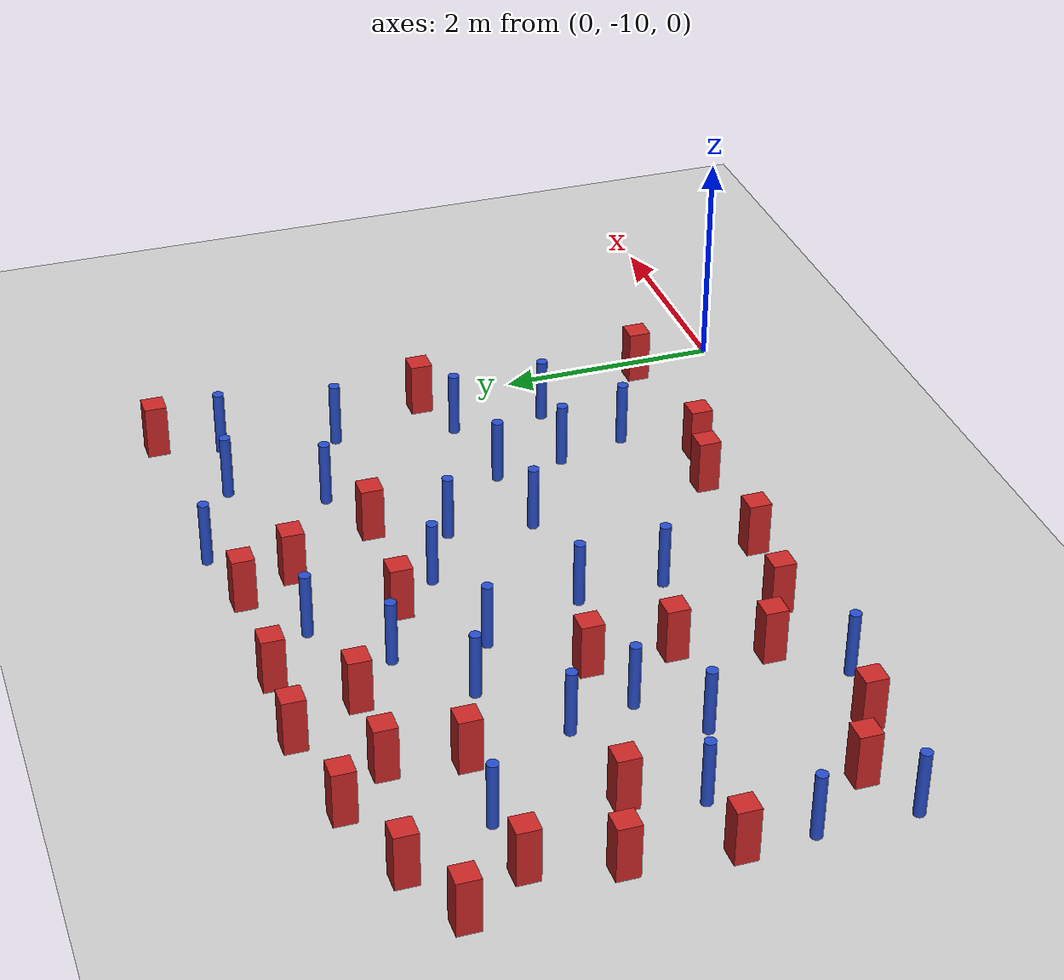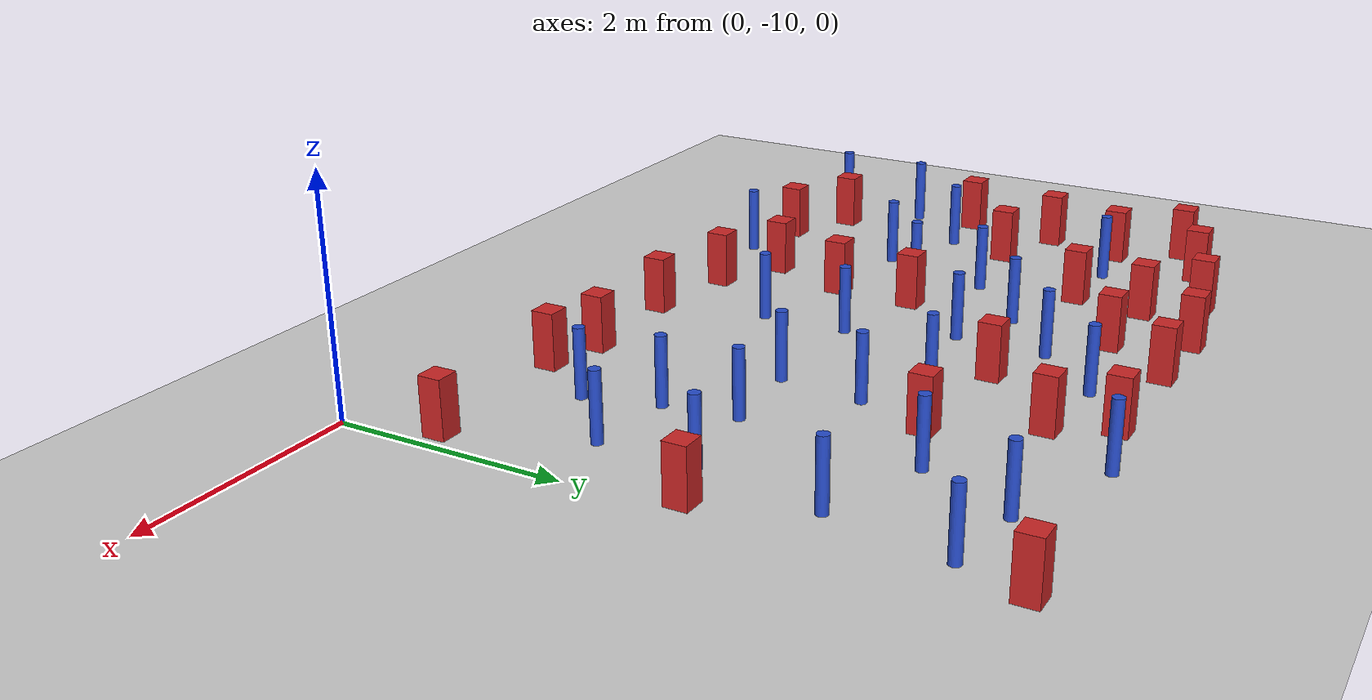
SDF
<sdf version="1.6">
 <world name="default">
  <model name="ground_plane">
   <static>1</static>
   <link name="link">
    <collision name="collision">
     <geometry><plane><normal>0 0 1</normal><size>100 100</size></plane></geometry>
     <surface><friction><ode><mu>100</mu><mu2>50</mu2></ode></friction></surface>
    </collision>
    <visual name="visual">
     <cast_shadows>0</cast_shadows>
     <geometry><plane><normal>0 0 1</normal><size>100 100</size></plane></geometry>
     <material>
      <ambient>1.0 1.0 1.0 1.0</ambient>
      <diffuse>0.8 0.8 0.8 1.0</diffuse>
      <specular>0.01 0.01 0.01 1.000000</specular>
     </material>
    </visual>
   </link>
  </model>
  <model name="pole_obstacle0">
   <static>true</static>
   <pose>-6.77165514357 -8.17607878755 2.88873142074e-08 -9.9053668967e-09 4.60219948993e-07 -1.20965994957e-07</pose>
   <link name="link">
    <pose>0 0 0.3 0 -0 0</pose>
    <inertial>
     <mass>1</mass>
     <inertia><ixx>0.145833</ixx><ixy>0</ixy><ixz>0</ixz><iyy>0.145833</iyy><iyz>0</iyz><izz>0.125</izz></inertia>
    </inertial>
    <collision name="collision">
     <geometry><cylinder><radius>0.05</radius><length>.6</length></cylinder></geometry>
    </collision>
    <visual name="visual">
     <geometry><cylinder><radius>0.05</radius><length>.6</length></cylinder></geometry>
     <material>
      <script><name>Gazebo/Blue</name><uri>file://media/materials/scripts/gazebo.material</uri></script>
     </material>
    </visual>
   </link>
  </model>
  <model name="pole_obstacle8">
   <static>true</static>
   <pose>-5.06630394369 -9.232732056 2.88873142074e-08 -9.9053668967e-09 4.60219948993e-07 -1.20965994957e-07</pose>
   <link name="link">
    <pose>0 0 0.3 0 -0 0</pose>
    <inertial>
     <mass>1</mass>
     <inertia><ixx>0.145833</ixx><ixy>0</ixy><ixz>0</ixz><iyy>0.145833</iyy><iyz>0</iyz><izz>0.125</izz></inertia>
    </inertial>
    <collision name="collision">
     <geometry><cylinder><radius>0.05</radius><length>.6</length></cylinder></geometry>
    </collision>
    <visual name="visual">
     <geometry><cylinder><radius>0.05</radius><length>.6</length></cylinder></geometry>
     <material>
      <script><name>Gazebo/Blue</name><uri>file://media/materials/scripts/gazebo.material</uri></script>
     </material>
    </visual>
   </link>
  </model>
  <model name="pole_obstacle21">
   <static>true</static>
   <pose>-6.17717436868 -7.54374471874 2.88873142074e-08 -9.90536690842e-09 4.60219948965e-07 -1.20965994976e-07</pose>
   <link name="link">
    <pose>0 0 0.3 0 -0 0</pose>
    <inertial>
     <mass>1</mass>
     <inertia><ixx>0.145833</ixx><ixy>0</ixy><ixz>0</ixz><iyy>0.145833</iyy><iyz>0</iyz><izz>0.125</izz></inertia>
    </inertial>
    <collision name="collision">
     <geometry><cylinder><radius>0.05</radius><length>.6</length></cylinder></geometry>
    </collision>
    <visual name="visual">
     <geometry><cylinder><radius>0.05</radius><length>.6</length></cylinder></geometry>
     <material>
      <script><name>Gazebo/Blue</name><uri>file://media/materials/scripts/gazebo.material</uri></script>
     </material>
    </visual>
   </link>
  </model>
  <model name="pole_obstacle24">
   <static>true</static>
   <pose>-3.81732461303 -6.56304847375 2.88873142074e-08 -9.90536692062e-09 4.60219948937e-07 -1.20965994985e-07</pose>
   <link name="link">
    <pose>0 0 0.3 0 -0 0</pose>
    <inertial>
     <mass>1</mass>
     <inertia><ixx>0.145833</ixx><ixy>0</ixy><ixz>0</ixz><iyy>0.145833</iyy><iyz>0</iyz><izz>0.125</izz></inertia>
    </inertial>
    <collision name="collision">
     <geometry><cylinder><radius>0.05</radius><length>.6</length></cylinder></geometry>
    </collision>
    <visual name="visual">
     <geometry><cylinder><radius>0.05</radius><length>.6</length></cylinder></geometry>
     <material>
      <script><name>Gazebo/Blue</name><uri>file://media/materials/scripts/gazebo.material</uri></script>
     </material>
    </visual>
   </link>
  </model>
  <model name="square_post_obstacle21">
   <static>true</static>
   <pose>-0.101962198539 -4.5727244108 8.22691968438e-08 7.2212513382e-06 -7.54495500217e-07 2.29674213826e-05</pose>
   <link name="link">
    <pose>0 0 0.25 0 -0 0</pose>
    <inertial>
     <mass>100</mass>
     <inertia>
      <ixx>0.166667</ixx>
      <ixy>0</ixy>
      <ixz>0</ixz>
      <iyy>0.166667</iyy>
      <iyz>0</iyz>
      <izz>0.166667</izz>
     </inertia>
    </inertial>
    <collision name="collision"><geometry><box><size>.2 .2 .5</size></box></geometry></collision>
    <visual name="visual">
     <geometry><box><size>.2 .2 .5</size></box></geometry>
     <material>
      <script><name>Gazebo/Red</name><uri>file://media/materials/scripts/gazebo.material</uri></script>
     </material>
    </visual>
   </link>
  </model>
  <model name="square_post_obstacle22">
   <static>true</static>
   <pose>-3.77840974403 -4.7696601577 8.22691968438e-08 7.22125133819e-06 -7.54495500217e-07 2.29674213826e-05</pose>
   <link name="link">
    <pose>0 0 0.25 0 -0 0</pose>
    <inertial>
     <mass>100</mass>
     <inertia>
      <ixx>0.166667</ixx>
      <ixy>0</ixy>
      <ixz>0</ixz>
      <iyy>0.166667</iyy>
      <iyz>0</iyz>
      <izz>0.166667</izz>
     </inertia>
    </inertial>
    <collision name="collision"><geometry><box><size>.2 .2 .5</size></box></geometry></collision>
    <visual name="visual">
     <geometry><box><size>.2 .2 .5</size></box></geometry>
     <material>
      <script><name>Gazebo/Red</name><uri>file://media/materials/scripts/gazebo.material</uri></script>
     </material>
    </visual>
   </link>
  </model>
  <model name="square_post_obstacle25">
   <static>true</static>
   <pose>-4.56944384187 -4.74234338974 8.22691968438e-08 7.22125133819e-06 -7.54495500217e-07 2.29674213826e-05</pose>
   <link name="link">
    <pose>0 0 0.25 0 -0 0</pose>
    <inertial>
     <mass>100</mass>
     <inertia>
      <ixx>0.166667</ixx>
      <ixy>0</ixy>
      <ixz>0</ixz>
      <iyy>0.166667</iyy>
      <iyz>0</iyz>
      <izz>0.166667</izz>
     </inertia>
    </inertial>
    <collision name="collision"><geometry><box><size>.2 .2 .5</size></box></geometry></collision>
    <visual name="visual">
     <geometry><box><size>.2 .2 .5</size></box></geometry>
     <material>
      <script><name>Gazebo/Red</name><uri>file://media/materials/scripts/gazebo.material</uri></script>
     </material>
    </visual>
   </link>
  </model>
  <model name="square_post_obstacle31">
   <static>true</static>
   <pose>-2.41314521624 -5.27377680135 8.22691968438e-08 7.2212513382e-06 -7.54495500217e-07 2.29674213826e-05</pose>
   <link name="link">
    <pose>0 0 0.25 0 -0 0</pose>
    <inertial>
     <mass>100</mass>
     <inertia>
      <ixx>0.166667</ixx>
      <ixy>0</ixy>
      <ixz>0</ixz>
      <iyy>0.166667</iyy>
      <iyz>0</iyz>
      <izz>0.166667</izz>
     </inertia>
    </inertial>
    <collision name="collision"><geometry><box><size>.2 .2 .5</size></box></geometry></collision>
    <visual name="visual">
     <geometry><box><size>.2 .2 .5</size></box></geometry>
     <material>
      <script><name>Gazebo/Red</name><uri>file://media/materials/scripts/gazebo.material</uri></script>
     </material>
    </visual>
   </link>
  </model>
  <model name="square_post_obstacle44">
   <static>true</static>
   <pose>-0.199405811699 -9.20870484476 8.22691968438e-08 7.22125133819e-06 -7.54495500217e-07 2.29674213826e-05</pose>
   <link name="link">
    <pose>0 0 0.25 0 -0 0</pose>
    <inertial>
     <mass>100</mass>
     <inertia>
      <ixx>0.166667</ixx>
      <ixy>0</ixy>
      <ixz>0</ixz>
      <iyy>0.166667</iyy>
      <iyz>0</iyz>
      <izz>0.166667</izz>
     </inertia>
    </inertial>
    <collision name="collision"><geometry><box><size>.2 .2 .5</size></box></geometry></collision>
    <visual name="visual">
     <geometry><box><size>.2 .2 .5</size></box></geometry>
     <material>
      <script><name>Gazebo/Red</name><uri>file://media/materials/scripts/gazebo.material</uri></script>
     </material>
    </visual>
   </link>
  </model>
  <model name="pole_obstacle59">
   <static>true</static>
   <pose>-3.49271152929 -7.47001296797 2.88873142074e-08 -9.90536692062e-09 4.60219948937e-07 -1.20965994985e-07</pose>
   <link name="link">
    <pose>0 0 0.3 0 -0 0</pose>
    <inertial>
     <mass>1</mass>
     <inertia><ixx>0.145833</ixx><ixy>0</ixy><ixz>0</ixz><iyy>0.145833</iyy><iyz>0</iyz><izz>0.125</izz></inertia>
    </inertial>
    <collision name="collision">
     <geometry><cylinder><radius>0.05</radius><length>.6</length></cylinder></geometry>
    </collision>
    <visual name="visual">
     <geometry><cylinder><radius>0.05</radius><length>.6</length></cylinder></geometry>
     <material>
      <script><name>Gazebo/Blue</name><uri>file://media/materials/scripts/gazebo.material</uri></script>
     </material>
    </visual>
   </link>
  </model>
  <model name="pole_obstacle60">
   <static>true</static>
   <pose>-2.84121401483 -6.38766666463 2.88873142074e-08 -9.90536689859e-09 4.60219948989e-07 -1.20965994961e-07</pose>
   <link name="link">
    <pose>0 0 0.3 0 -0 0</pose>
    <inertial>
     <mass>1</mass>
     <inertia><ixx>0.145833</ixx><ixy>0</ixy><ixz>0</ixz><iyy>0.145833</iyy><iyz>0</iyz><izz>0.125</izz></inertia>
    </inertial>
    <collision name="collision">
     <geometry><cylinder><radius>0.05</radius><length>.6</length></cylinder></geometry>
    </collision>
    <visual name="visual">
     <geometry><cylinder><radius>0.05</radius><length>.6</length></cylinder></geometry>
     <material>
      <script><name>Gazebo/Blue</name><uri>file://media/materials/scripts/gazebo.material</uri></script>
     </material>
    </visual>
   </link>
  </model>
  <model name="pole_obstacle66">
   <static>true</static>
   <pose>-3.2269163307 -5.19764869994 2.88873142074e-08 -9.90536689859e-09 4.60219948989e-07 -1.20965994961e-07</pose>
   <link name="link">
    <pose>0 0 0.3 0 -0 0</pose>
    <inertial>
     <mass>1</mass>
     <inertia><ixx>0.145833</ixx><ixy>0</ixy><ixz>0</ixz><iyy>0.145833</iyy><iyz>0</iyz><izz>0.125</izz></inertia>
    </inertial>
    <collision name="collision">
     <geometry><cylinder><radius>0.05</radius><length>.6</length></cylinder></geometry>
    </collision>
    <visual name="visual">
     <geometry><cylinder><radius>0.05</radius><length>.6</length></cylinder></geometry>
     <material>
      <script><name>Gazebo/Blue</name><uri>file://media/materials/scripts/gazebo.material</uri></script>
     </material>
    </visual>
   </link>
  </model>
  <model name="square_post_obstacle55">
   <static>true</static>
   <pose>-2.65385909627 -4.79170296392 8.22691968438e-08 7.2212513382e-06 -7.54495500217e-07 2.29674213826e-05</pose>
   <link name="link">
    <pose>0 0 0.25 0 -0 0</pose>
    <inertial>
     <mass>100</mass>
     <inertia>
      <ixx>0.166667</ixx>
      <ixy>0</ixy>
      <ixz>0</ixz>
      <iyy>0.166667</iyy>
      <iyz>0</iyz>
      <izz>0.166667</izz>
     </inertia>
    </inertial>
    <collision name="collision"><geometry><box><size>.2 .2 .5</size></box></geometry></collision>
    <visual name="visual">
     <geometry><box><size>.2 .2 .5</size></box></geometry>
     <material>
      <script><name>Gazebo/Red</name><uri>file://media/materials/scripts/gazebo.material</uri></script>
     </material>
    </visual>
   </link>
  </model>
  <model name="square_post_obstacle62">
   <static>true</static>
   <pose>-5.99004791572 -6.9444096571 8.22691968438e-08 7.2212513382e-06 -7.54495500217e-07 2.29674213826e-05</pose>
   <link name="link">
    <pose>0 0 0.25 0 -0 0</pose>
    <inertial>
     <mass>100</mass>
     <inertia>
      <ixx>0.166667</ixx>
      <ixy>0</ixy>
      <ixz>0</ixz>
      <iyy>0.166667</iyy>
      <iyz>0</iyz>
      <izz>0.166667</izz>
     </inertia>
    </inertial>
    <collision name="collision"><geometry><box><size>.2 .2 .5</size></box></geometry></collision>
    <visual name="visual">
     <geometry><box><size>.2 .2 .5</size></box></geometry>
     <material>
      <script><name>Gazebo/Red</name><uri>file://media/materials/scripts/gazebo.material</uri></script>
     </material>
    </visual>
   </link>
  </model>
  <model name="pole_obstacle78">
   <static>true</static>
   <pose>-1.25417645931 -8.67485099715 2.88873142074e-08 -9.90536690474e-09 4.60219948974e-07 -1.2096599497e-07</pose>
   <link name="link">
    <pose>0 0 0.3 0 -0 0</pose>
    <inertial>
     <mass>1</mass>
     <inertia><ixx>0.145833</ixx><ixy>0</ixy><ixz>0</ixz><iyy>0.145833</iyy><iyz>0</iyz><izz>0.125</izz></inertia>
    </inertial>
    <collision name="collision">
     <geometry><cylinder><radius>0.05</radius><length>.6</length></cylinder></geometry>
    </collision>
    <visual name="visual">
     <geometry><cylinder><radius>0.05</radius><length>.6</length></cylinder></geometry>
     <material>
      <script><name>Gazebo/Blue</name><uri>file://media/materials/scripts/gazebo.material</uri></script>
     </material>
    </visual>
   </link>
  </model>
  <model name="pole_obstacle80">
   <static>true</static>
   <pose>-1.50335741557 -7.39721989339 2.88873142074e-08 -9.90536689852e-09 4.60219948989e-07 -1.2096599496e-07</pose>
   <link name="link">
    <pose>0 0 0.3 0 -0 0</pose>
    <inertial>
     <mass>1</mass>
     <inertia><ixx>0.145833</ixx><ixy>0</ixy><ixz>0</ixz><iyy>0.145833</iyy><iyz>0</iyz><izz>0.125</izz></inertia>
    </inertial>
    <collision name="collision">
     <geometry><cylinder><radius>0.05</radius><length>.6</length></cylinder></geometry>
    </collision>
    <visual name="visual">
     <geometry><cylinder><radius>0.05</radius><length>.6</length></cylinder></geometry>
     <material>
      <script><name>Gazebo/Blue</name><uri>file://media/materials/scripts/gazebo.material</uri></script>
     </material>
    </visual>
   </link>
  </model>
  <model name="pole_obstacle83">
   <static>true</static>
   <pose>-5.92347277667 -5.93102095292 2.88873142074e-08 -9.90536690842e-09 4.60219948965e-07 -1.20965994976e-07</pose>
   <link name="link">
    <pose>0 0 0.3 0 -0 0</pose>
    <inertial>
     <mass>1</mass>
     <inertia><ixx>0.145833</ixx><ixy>0</ixy><ixz>0</ixz><iyy>0.145833</iyy><iyz>0</iyz><izz>0.125</izz></inertia>
    </inertial>
    <collision name="collision">
     <geometry><cylinder><radius>0.05</radius><length>.6</length></cylinder></geometry>
    </collision>
    <visual name="visual">
     <geometry><cylinder><radius>0.05</radius><length>.6</length></cylinder></geometry>
     <material>
      <script><name>Gazebo/Blue</name><uri>file://media/materials/scripts/gazebo.material</uri></script>
     </material>
    </visual>
   </link>
  </model>
  <model name="pole_obstacle87">
   <static>true</static>
   <pose>-6.78232700925 -9.01000941079 2.88873142074e-08 -9.9053668967e-09 4.60219948993e-07 -1.20965994957e-07</pose>
   <link name="link">
    <pose>0 0 0.3 0 -0 0</pose>
    <inertial>
     <mass>1</mass>
     <inertia><ixx>0.145833</ixx><ixy>0</ixy><ixz>0</ixz><iyy>0.145833</iyy><iyz>0</iyz><izz>0.125</izz></inertia>
    </inertial>
    <collision name="collision">
     <geometry><cylinder><radius>0.05</radius><length>.6</length></cylinder></geometry>
    </collision>
    <visual name="visual">
     <geometry><cylinder><radius>0.05</radius><length>.6</length></cylinder></geometry>
     <material>
      <script><name>Gazebo/Blue</name><uri>file://media/materials/scripts/gazebo.material</uri></script>
     </material>
    </visual>
   </link>
  </model>
  <model name="square_post_obstacle77">
   <static>true</static>
   <pose>-3.21331178517 -9.17067999536 8.22691968438e-08 7.22125133819e-06 -7.54495500217e-07 2.29674213826e-05</pose>
   <link name="link">
    <pose>0 0 0.25 0 -0 0</pose>
    <inertial>
     <mass>100</mass>
     <inertia>
      <ixx>0.166667</ixx>
      <ixy>0</ixy>
      <ixz>0</ixz>
      <iyy>0.166667</iyy>
      <iyz>0</iyz>
      <izz>0.166667</izz>
     </inertia>
    </inertial>
    <collision name="collision"><geometry><box><size>.2 .2 .5</size></box></geometry></collision>
    <visual name="visual">
     <geometry><box><size>.2 .2 .5</size></box></geometry>
     <material>
      <script><name>Gazebo/Red</name><uri>file://media/materials/scripts/gazebo.material</uri></script>
     </material>
    </visual>
   </link>
  </model>
  <model name="pole_obstacle91">
   <static>true</static>
   <pose>-0.463265977892 -6.17146830706 2.88873142074e-08 -9.90536689758e-09 4.60219948991e-07 -1.20965994957e-07</pose>
   <link name="link">
    <pose>0 0 0.3 0 -0 0</pose>
    <inertial>
     <mass>1</mass>
     <inertia><ixx>0.145833</ixx><ixy>0</ixy><ixz>0</ixz><iyy>0.145833</iyy><iyz>0</iyz><izz>0.125</izz></inertia>
    </inertial>
    <collision name="collision">
     <geometry><cylinder><radius>0.05</radius><length>.6</length></cylinder></geometry>
    </collision>
    <visual name="visual">
     <geometry><cylinder><radius>0.05</radius><length>.6</length></cylinder></geometry>
     <material>
      <script><name>Gazebo/Blue</name><uri>file://media/materials/scripts/gazebo.material</uri></script>
     </material>
    </visual>
   </link>
  </model>
  <model name="square_post_obstacle87">
   <static>true</static>
   <pose>-4.39128299344 -7.96316157145 8.22691968438e-08 7.2212513382e-06 -7.54495500217e-07 2.29674213826e-05</pose>
   <link name="link">
    <pose>0 0 0.25 0 -0 0</pose>
    <inertial>
     <mass>100</mass>
     <inertia>
      <ixx>0.166667</ixx>
      <ixy>0</ixy>
      <ixz>0</ixz>
      <iyy>0.166667</iyy>
      <iyz>0</iyz>
      <izz>0.166667</izz>
     </inertia>
    </inertial>
    <collision name="collision"><geometry><box><size>.2 .2 .5</size></box></geometry></collision>
    <visual name="visual">
     <geometry><box><size>.2 .2 .5</size></box></geometry>
     <material>
      <script><name>Gazebo/Red</name><uri>file://media/materials/scripts/gazebo.material</uri></script>
     </material>
    </visual>
   </link>
  </model>
  <model name="pole_obstacle99">
   <static>true</static>
   <pose>-1.97155286888 -4.63274980281 2.88873142074e-08 -9.90536689721e-09 4.60219948992e-07 -1.20965994958e-07</pose>
   <link name="link">
    <pose>0 0 0.3 0 -0 0</pose>
    <inertial>
     <mass>1</mass>
     <inertia><ixx>0.145833</ixx><ixy>0</ixy><ixz>0</ixz><iyy>0.145833</iyy><iyz>0</iyz><izz>0.125</izz></inertia>
    </inertial>
    <collision name="collision">
     <geometry><cylinder><radius>0.05</radius><length>.6</length></cylinder></geometry>
    </collision>
    <visual name="visual">
     <geometry><cylinder><radius>0.05</radius><length>.6</length></cylinder></geometry>
     <material>
      <script><name>Gazebo/Blue</name><uri>file://media/materials/scripts/gazebo.material</uri></script>
     </material>
    </visual>
   </link>
  </model>
  <model name="square_post_obstacle91">
   <static>true</static>
   <pose>-4.0761801953 -9.02302065067 8.22691968438e-08 7.22125133819e-06 -7.54495500217e-07 2.29674213826e-05</pose>
   <link name="link">
    <pose>0 0 0.25 0 -0 0</pose>
    <inertial>
     <mass>100</mass>
     <inertia>
      <ixx>0.166667</ixx>
      <ixy>0</ixy>
      <ixz>0</ixz>
      <iyy>0.166667</iyy>
      <iyz>0</iyz>
      <izz>0.166667</izz>
     </inertia>
    </inertial>
    <collision name="collision"><geometry><box><size>.2 .2 .5</size></box></geometry></collision>
    <visual name="visual">
     <geometry><box><size>.2 .2 .5</size></box></geometry>
     <material>
      <script><name>Gazebo/Red</name><uri>file://media/materials/scripts/gazebo.material</uri></script>
     </material>
    </visual>
   </link>
  </model>
  <model name="square_post_obstacle96">
   <static>true</static>
   <pose>-5.10505085989 -5.32092347346 8.22691968438e-08 7.22125133819e-06 -7.54495500217e-07 2.29674213826e-05</pose>
   <link name="link">
    <pose>0 0 0.25 0 -0 0</pose>
    <inertial>
     <mass>100</mass>
     <inertia>
      <ixx>0.166667</ixx>
      <ixy>0</ixy>
      <ixz>0</ixz>
      <iyy>0.166667</iyy>
      <iyz>0</iyz>
      <izz>0.166667</izz>
     </inertia>
    </inertial>
    <collision name="collision"><geometry><box><size>.2 .2 .5</size></box></geometry></collision>
    <visual name="visual">
     <geometry><box><size>.2 .2 .5</size></box></geometry>
     <material>
      <script><name>Gazebo/Red</name><uri>file://media/materials/scripts/gazebo.material</uri></script>
     </material>
    </visual>
   </link>
  </model>
  <model name="pole_obstacle103">
   <static>true</static>
   <pose>-5.39617288856 -7.87382187582 2.88873142074e-08 -9.90536690842e-09 4.60219948965e-07 -1.20965994976e-07</pose>
   <link name="link">
    <pose>0 0 0.3 0 -0 0</pose>
    <inertial>
     <mass>1</mass>
     <inertia><ixx>0.145833</ixx><ixy>0</ixy><ixz>0</ixz><iyy>0.145833</iyy><iyz>0</iyz><izz>0.125</izz></inertia>
    </inertial>
    <collision name="collision">
     <geometry><cylinder><radius>0.05</radius><length>.6</length></cylinder></geometry>
    </collision>
    <visual name="visual">
     <geometry><cylinder><radius>0.05</radius><length>.6</length></cylinder></geometry>
     <material>
      <script><name>Gazebo/Blue</name><uri>file://media/materials/scripts/gazebo.material</uri></script>
     </material>
    </visual>
   </link>
  </model>
  <model name="square_post_obstacle100">
   <static>true</static>
   <pose>-1.66446396733 -9.25731377297 8.22691968438e-08 7.2212513382e-06 -7.54495500217e-07 2.29674213826e-05</pose>
   <link name="link">
    <pose>0 0 0.25 0 -0 0</pose>
    <inertial>
     <mass>100</mass>
     <inertia>
      <ixx>0.166667</ixx>
      <ixy>0</ixy>
      <ixz>0</ixz>
      <iyy>0.166667</iyy>
      <iyz>0</iyz>
      <izz>0.166667</izz>
     </inertia>
    </inertial>
    <collision name="collision"><geometry><box><size>.2 .2 .5</size></box></geometry></collision>
    <visual name="visual">
     <geometry><box><size>.2 .2 .5</size></box></geometry>
     <material>
      <script><name>Gazebo/Red</name><uri>file://media/materials/scripts/gazebo.material</uri></script>
     </material>
    </visual>
   </link>
  </model>
  <model name="pole_obstacle108">
   <static>true</static>
   <pose>-1.38353431195 -5.83797638722 2.88873142074e-08 -9.90536689852e-09 4.60219948989e-07 -1.2096599496e-07</pose>
   <link name="link">
    <pose>0 0 0.3 0 -0 0</pose>
    <inertial>
     <mass>1</mass>
     <inertia><ixx>0.145833</ixx><ixy>0</ixy><ixz>0</ixz><iyy>0.145833</iyy><iyz>0</iyz><izz>0.125</izz></inertia>
    </inertial>
    <collision name="collision">
     <geometry><cylinder><radius>0.05</radius><length>.6</length></cylinder></geometry>
    </collision>
    <visual name="visual">
     <geometry><cylinder><radius>0.05</radius><length>.6</length></cylinder></geometry>
     <material>
      <script><name>Gazebo/Blue</name><uri>file://media/materials/scripts/gazebo.material</uri></script>
     </material>
    </visual>
   </link>
  </model>
  <model name="pole_obstacle109">
   <static>true</static>
   <pose>-0.636944202336 -8.10894807051 2.88873142074e-08 -9.90536690779e-09 4.60219948967e-07 -1.20965994975e-07</pose>
   <link name="link">
    <pose>0 0 0.3 0 -0 0</pose>
    <inertial>
     <mass>1</mass>
     <inertia><ixx>0.145833</ixx><ixy>0</ixy><ixz>0</ixz><iyy>0.145833</iyy><iyz>0</iyz><izz>0.125</izz></inertia>
    </inertial>
    <collision name="collision">
     <geometry><cylinder><radius>0.05</radius><length>.6</length></cylinder></geometry>
    </collision>
    <visual name="visual">
     <geometry><cylinder><radius>0.05</radius><length>.6</length></cylinder></geometry>
     <material>
      <script><name>Gazebo/Blue</name><uri>file://media/materials/scripts/gazebo.material</uri></script>
     </material>
    </visual>
   </link>
  </model>
  <model name="square_post_obstacle105">
   <static>true</static>
   <pose>-4.37417711245 -7.23702299485 8.22691968438e-08 7.2212513382e-06 -7.54495500217e-07 2.29674213826e-05</pose>
   <link name="link">
    <pose>0 0 0.25 0 -0 0</pose>
    <inertial>
     <mass>100</mass>
     <inertia>
      <ixx>0.166667</ixx>
      <ixy>0</ixy>
      <ixz>0</ixz>
      <iyy>0.166667</iyy>
      <iyz>0</iyz>
      <izz>0.166667</izz>
     </inertia>
    </inertial>
    <collision name="collision"><geometry><box><size>.2 .2 .5</size></box></geometry></collision>
    <visual name="visual">
     <geometry><box><size>.2 .2 .5</size></box></geometry>
     <material>
      <script><name>Gazebo/Red</name><uri>file://media/materials/scripts/gazebo.material</uri></script>
     </material>
    </visual>
   </link>
  </model>
  <model name="square_post_obstacle108">
   <static>true</static>
   <pose>-3.17380532889 -5.99960877128 8.22691968438e-08 7.2212513382e-06 -7.54495500217e-07 2.29674213826e-05</pose>
   <link name="link">
    <pose>0 0 0.25 0 -0 0</pose>
    <inertial>
     <mass>100</mass>
     <inertia>
      <ixx>0.166667</ixx>
      <ixy>0</ixy>
      <ixz>0</ixz>
      <iyy>0.166667</iyy>
      <iyz>0</iyz>
      <izz>0.166667</izz>
     </inertia>
    </inertial>
    <collision name="collision"><geometry><box><size>.2 .2 .5</size></box></geometry></collision>
    <visual name="visual">
     <geometry><box><size>.2 .2 .5</size></box></geometry>
     <material>
      <script><name>Gazebo/Red</name><uri>file://media/materials/scripts/gazebo.material</uri></script>
     </material>
    </visual>
   </link>
  </model>
  <model name="pole_obstacle114">
   <static>true</static>
   <pose>-0.280500441158 -5.13701600477 2.88873142074e-08 -9.90536689618e-09 4.60219948994e-07 -1.20965994956e-07</pose>
   <link name="link">
    <pose>0 0 0.3 0 -0 0</pose>
    <inertial>
     <mass>1</mass>
     <inertia><ixx>0.145833</ixx><ixy>0</ixy><ixz>0</ixz><iyy>0.145833</iyy><iyz>0</iyz><izz>0.125</izz></inertia>
    </inertial>
    <collision name="collision">
     <geometry><cylinder><radius>0.05</radius><length>.6</length></cylinder></geometry>
    </collision>
    <visual name="visual">
     <geometry><cylinder><radius>0.05</radius><length>.6</length></cylinder></geometry>
     <material>
      <script><name>Gazebo/Blue</name><uri>file://media/materials/scripts/gazebo.material</uri></script>
     </material>
    </visual>
   </link>
  </model>
  <model name="pole_obstacle116">
   <static>true</static>
   <pose>-2.2268959033 -6.71264650588 2.88873142074e-08 -9.90536689859e-09 4.60219948989e-07 -1.20965994961e-07</pose>
   <link name="link">
    <pose>0 0 0.3 0 -0 0</pose>
    <inertial>
     <mass>1</mass>
     <inertia><ixx>0.145833</ixx><ixy>0</ixy><ixz>0</ixz><iyy>0.145833</iyy><iyz>0</iyz><izz>0.125</izz></inertia>
    </inertial>
    <collision name="collision">
     <geometry><cylinder><radius>0.05</radius><length>.6</length></cylinder></geometry>
    </collision>
    <visual name="visual">
     <geometry><cylinder><radius>0.05</radius><length>.6</length></cylinder></geometry>
     <material>
      <script><name>Gazebo/Blue</name><uri>file://media/materials/scripts/gazebo.material</uri></script>
     </material>
    </visual>
   </link>
  </model>
  <model name="pole_obstacle118">
   <static>true</static>
   <pose>-4.92399187673 -7.42474921222 2.88873142074e-08 -9.90536690842e-09 4.60219948965e-07 -1.20965994976e-07</pose>
   <link name="link">
    <pose>0 0 0.3 0 -0 0</pose>
    <inertial>
     <mass>1</mass>
     <inertia><ixx>0.145833</ixx><ixy>0</ixy><ixz>0</ixz><iyy>0.145833</iyy><iyz>0</iyz><izz>0.125</izz></inertia>
    </inertial>
    <collision name="collision">
     <geometry><cylinder><radius>0.05</radius><length>.6</length></cylinder></geometry>
    </collision>
    <visual name="visual">
     <geometry><cylinder><radius>0.05</radius><length>.6</length></cylinder></geometry>
     <material>
      <script><name>Gazebo/Blue</name><uri>file://media/materials/scripts/gazebo.material</uri></script>
     </material>
    </visual>
   </link>
  </model>
  <model name="square_post_obstacle130">
   <static>true</static>
   <pose>-6.28019395446 -5.13819184429 8.22691968438e-08 7.22125133819e-06 -7.54495500217e-07 2.29674213826e-05</pose>
   <link name="link">
    <pose>0 0 0.25 0 -0 0</pose>
    <inertial>
     <mass>100</mass>
     <inertia>
      <ixx>0.166667</ixx>
      <ixy>0</ixy>
      <ixz>0</ixz>
      <iyy>0.166667</iyy>
      <iyz>0</iyz>
      <izz>0.166667</izz>
     </inertia>
    </inertial>
    <collision name="collision"><geometry><box><size>.2 .2 .5</size></box></geometry></collision>
    <visual name="visual">
     <geometry><box><size>.2 .2 .5</size></box></geometry>
     <material>
      <script><name>Gazebo/Red</name><uri>file://media/materials/scripts/gazebo.material</uri></script>
     </material>
    </visual>
   </link>
  </model>
  <model name="square_post_obstacle132">
   <static>true</static>
   <pose>-6.69027256399 -6.68655111098 8.22691968438e-08 7.2212513382e-06 -7.54495500217e-07 2.29674213826e-05</pose>
   <link name="link">
    <pose>0 0 0.25 0 -0 0</pose>
    <inertial>
     <mass>100</mass>
     <inertia>
      <ixx>0.166667</ixx>
      <ixy>0</ixy>
      <ixz>0</ixz>
      <iyy>0.166667</iyy>
      <iyz>0</iyz>
      <izz>0.166667</izz>
     </inertia>
    </inertial>
    <collision name="collision"><geometry><box><size>.2 .2 .5</size></box></geometry></collision>
    <visual name="visual">
     <geometry><box><size>.2 .2 .5</size></box></geometry>
     <material>
      <script><name>Gazebo/Red</name><uri>file://media/materials/scripts/gazebo.material</uri></script>
     </material>
    </visual>
   </link>
  </model>
  <model name="pole_obstacle134">
   <static>true</static>
   <pose>-3.47020118167 -8.2362786086 2.88873142074e-08 -9.90536692318e-09 4.6021994893e-07 -1.20965994988e-07</pose>
   <link name="link">
    <pose>0 0 0.3 0 -0 0</pose>
    <inertial>
     <mass>1</mass>
     <inertia><ixx>0.145833</ixx><ixy>0</ixy><ixz>0</ixz><iyy>0.145833</iyy><iyz>0</iyz><izz>0.125</izz></inertia>
    </inertial>
    <collision name="collision">
     <geometry><cylinder><radius>0.05</radius><length>.6</length></cylinder></geometry>
    </collision>
    <visual name="visual">
     <geometry><cylinder><radius>0.05</radius><length>.6</length></cylinder></geometry>
     <material>
      <script><name>Gazebo/Blue</name><uri>file://media/materials/scripts/gazebo.material</uri></script>
     </material>
    </visual>
   </link>
  </model>
  <model name="square_post_obstacle134">
   <static>true</static>
   <pose>-5.49257355053 -4.89002448878 8.22691968438e-08 7.22125133819e-06 -7.54495500217e-07 2.29674213826e-05</pose>
   <link name="link">
    <pose>0 0 0.25 0 -0 0</pose>
    <inertial>
     <mass>100</mass>
     <inertia>
      <ixx>0.166667</ixx>
      <ixy>0</ixy>
      <ixz>0</ixz>
      <iyy>0.166667</iyy>
      <iyz>0</iyz>
      <izz>0.166667</izz>
     </inertia>
    </inertial>
    <collision name="collision"><geometry><box><size>.2 .2 .5</size></box></geometry></collision>
    <visual name="visual">
     <geometry><box><size>.2 .2 .5</size></box></geometry>
     <material>
      <script><name>Gazebo/Red</name><uri>file://media/materials/scripts/gazebo.material</uri></script>
     </material>
    </visual>
   </link>
  </model>
  <model name="pole_obstacle140">
   <static>true</static>
   <pose>-1.42123108749 -8.03473901521 2.88873142074e-08 -9.90536691789e-09 4.60219948943e-07 -1.20965994989e-07</pose>
   <link name="link">
    <pose>0 0 0.3 0 -0 0</pose>
    <inertial>
     <mass>1</mass>
     <inertia><ixx>0.145833</ixx><ixy>0</ixy><ixz>0</ixz><iyy>0.145833</iyy><iyz>0</iyz><izz>0.125</izz></inertia>
    </inertial>
    <collision name="collision">
     <geometry><cylinder><radius>0.05</radius><length>.6</length></cylinder></geometry>
    </collision>
    <visual name="visual">
     <geometry><cylinder><radius>0.05</radius><length>.6</length></cylinder></geometry>
     <material>
      <script><name>Gazebo/Blue</name><uri>file://media/materials/scripts/gazebo.material</uri></script>
     </material>
    </visual>
   </link>
  </model>
  <model name="square_post_obstacle135">
   <static>true</static>
   <pose>-6.78945698526 -7.56994098336 8.22691968438e-08 7.22125133819e-06 -7.54495500217e-07 2.29674213826e-05</pose>
   <link name="link">
    <pose>0 0 0.25 0 -0 0</pose>
    <inertial>
     <mass>100</mass>
     <inertia>
      <ixx>0.166667</ixx>
      <ixy>0</ixy>
      <ixz>0</ixz>
      <iyy>0.166667</iyy>
      <iyz>0</iyz>
      <izz>0.166667</izz>
     </inertia>
    </inertial>
    <collision name="collision"><geometry><box><size>.2 .2 .5</size></box></geometry></collision>
    <visual name="visual">
     <geometry><box><size>.2 .2 .5</size></box></geometry>
     <material>
      <script><name>Gazebo/Red</name><uri>file://media/materials/scripts/gazebo.material</uri></script>
     </material>
    </visual>
   </link>
  </model>
  <model name="pole_obstacle145">
   <static>true</static>
   <pose>-5.08208414748 -6.83924280433 2.88873142074e-08 -9.90536690842e-09 4.60219948965e-07 -1.20965994976e-07</pose>
   <link name="link">
    <pose>0 0 0.3 0 -0 0</pose>
    <inertial>
     <mass>1</mass>
     <inertia><ixx>0.145833</ixx><ixy>0</ixy><ixz>0</ixz><iyy>0.145833</iyy><iyz>0</iyz><izz>0.125</izz></inertia>
    </inertial>
    <collision name="collision">
     <geometry><cylinder><radius>0.05</radius><length>.6</length></cylinder></geometry>
    </collision>
    <visual name="visual">
     <geometry><cylinder><radius>0.05</radius><length>.6</length></cylinder></geometry>
     <material>
      <script><name>Gazebo/Blue</name><uri>file://media/materials/scripts/gazebo.material</uri></script>
     </material>
    </visual>
   </link>
  </model>
  <model name="pole_obstacle149">
   <static>true</static>
   <pose>-1.01159442651 -5.03337560698 2.88873142074e-08 -9.90536689792e-09 4.6021994899e-07 -1.2096599496e-07</pose>
   <link name="link">
    <pose>0 0 0.3 0 -0 0</pose>
    <inertial>
     <mass>1</mass>
     <inertia><ixx>0.145833</ixx><ixy>0</ixy><ixz>0</ixz><iyy>0.145833</iyy><iyz>0</iyz><izz>0.125</izz></inertia>
    </inertial>
    <collision name="collision">
     <geometry><cylinder><radius>0.05</radius><length>.6</length></cylinder></geometry>
    </collision>
    <visual name="visual">
     <geometry><cylinder><radius>0.05</radius><length>.6</length></cylinder></geometry>
     <material>
      <script><name>Gazebo/Blue</name><uri>file://media/materials/scripts/gazebo.material</uri></script>
     </material>
    </visual>
   </link>
  </model>
  <model name="square_post_obstacle147">
   <static>true</static>
   <pose>-6.50753612151 -5.98564279418 8.22691968438e-08 7.22125133819e-06 -7.54495500217e-07 2.29674213826e-05</pose>
   <link name="link">
    <pose>0 0 0.25 0 -0 0</pose>
    <inertial>
     <mass>100</mass>
     <inertia>
      <ixx>0.166667</ixx>
      <ixy>0</ixy>
      <ixz>0</ixz>
      <iyy>0.166667</iyy>
      <iyz>0</iyz>
      <izz>0.166667</izz>
     </inertia>
    </inertial>
    <collision name="collision"><geometry><box><size>.2 .2 .5</size></box></geometry></collision>
    <visual name="visual">
     <geometry><box><size>.2 .2 .5</size></box></geometry>
     <material>
      <script><name>Gazebo/Red</name><uri>file://media/materials/scripts/gazebo.material</uri></script>
     </material>
    </visual>
   </link>
  </model>
  <model name="square_post_obstacle163">
   <static>true</static>
   <pose>-4.65247120911 -8.70759790786 8.22691968438e-08 7.22125133819e-06 -7.54495500217e-07 2.29674213826e-05</pose>
   <link name="link">
    <pose>0 0 0.25 0 -0 0</pose>
    <inertial>
     <mass>100</mass>
     <inertia>
      <ixx>0.166667</ixx>
      <ixy>0</ixy>
      <ixz>0</ixz>
      <iyy>0.166667</iyy>
      <iyz>0</iyz>
      <izz>0.166667</izz>
     </inertia>
    </inertial>
    <collision name="collision"><geometry><box><size>.2 .2 .5</size></box></geometry></collision>
    <visual name="visual">
     <geometry><box><size>.2 .2 .5</size></box></geometry>
     <material>
      <script><name>Gazebo/Red</name><uri>file://media/materials/scripts/gazebo.material</uri></script>
     </material>
    </visual>
   </link>
  </model>
  <model name="pole_obstacle173">
   <static>true</static>
   <pose>-4.40504222996 -6.27587645522 2.88873142074e-08 -9.90536690842e-09 4.60219948965e-07 -1.20965994976e-07</pose>
   <link name="link">
    <pose>0 0 0.3 0 -0 0</pose>
    <inertial>
     <mass>1</mass>
     <inertia><ixx>0.145833</ixx><ixy>0</ixy><ixz>0</ixz><iyy>0.145833</iyy><iyz>0</iyz><izz>0.125</izz></inertia>
    </inertial>
    <collision name="collision">
     <geometry><cylinder><radius>0.05</radius><length>.6</length></cylinder></geometry>
    </collision>
    <visual name="visual">
     <geometry><cylinder><radius>0.05</radius><length>.6</length></cylinder></geometry>
     <material>
      <script><name>Gazebo/Blue</name><uri>file://media/materials/scripts/gazebo.material</uri></script>
     </material>
    </visual>
   </link>
  </model>
  <model name="pole_obstacle174">
   <static>true</static>
   <pose>-2.31458835272 -7.46321969067 2.88873142074e-08 -9.90536689859e-09 4.60219948989e-07 -1.20965994961e-07</pose>
   <link name="link">
    <pose>0 0 0.3 0 -0 0</pose>
    <inertial>
     <mass>1</mass>
     <inertia><ixx>0.145833</ixx><ixy>0</ixy><ixz>0</ixz><iyy>0.145833</iyy><iyz>0</iyz><izz>0.125</izz></inertia>
    </inertial>
    <collision name="collision">
     <geometry><cylinder><radius>0.05</radius><length>.6</length></cylinder></geometry>
    </collision>
    <visual name="visual">
     <geometry><cylinder><radius>0.05</radius><length>.6</length></cylinder></geometry>
     <material>
      <script><name>Gazebo/Blue</name><uri>file://media/materials/scripts/gazebo.material</uri></script>
     </material>
    </visual>
   </link>
  </model>
  <model name="square_post_obstacle172">
   <static>true</static>
   <pose>-1.98103496008 -6.0815198411 8.22691968438e-08 7.2212513382e-06 -7.54495500217e-07 2.29674213826e-05</pose>
   <link name="link">
    <pose>0 0 0.25 0 -0 0</pose>
    <inertial>
     <mass>100</mass>
     <inertia>
      <ixx>0.166667</ixx>
      <ixy>0</ixy>
      <ixz>0</ixz>
      <iyy>0.166667</iyy>
      <iyz>0</iyz>
      <izz>0.166667</izz>
     </inertia>
    </inertial>
    <collision name="collision"><geometry><box><size>.2 .2 .5</size></box></geometry></collision>
    <visual name="visual">
     <geometry><box><size>.2 .2 .5</size></box></geometry>
     <material>
      <script><name>Gazebo/Red</name><uri>file://media/materials/scripts/gazebo.material</uri></script>
     </material>
    </visual>
   </link>
  </model>
  <model name="square_post_obstacle173">
   <static>true</static>
   <pose>-6.28823487279 -8.76769089427 8.22691968438e-08 7.2212513382e-06 -7.54495500217e-07 2.29674213826e-05</pose>
   <link name="link">
    <pose>0 0 0.25 0 -0 0</pose>
    <inertial>
     <mass>100</mass>
     <inertia>
      <ixx>0.166667</ixx>
      <ixy>0</ixy>
      <ixz>0</ixz>
      <iyy>0.166667</iyy>
      <iyz>0</iyz>
      <izz>0.166667</izz>
     </inertia>
    </inertial>
    <collision name="collision"><geometry><box><size>.2 .2 .5</size></box></geometry></collision>
    <visual name="visual">
     <geometry><box><size>.2 .2 .5</size></box></geometry>
     <material>
      <script><name>Gazebo/Red</name><uri>file://media/materials/scripts/gazebo.material</uri></script>
     </material>
    </visual>
   </link>
  </model>
  <model name="square_post_obstacle177">
   <static>true</static>
   <pose>-6.86567615182 -5.42363839284 8.22691968438e-08 7.22125133819e-06 -7.54495500217e-07 2.29674213826e-05</pose>
   <link name="link">
    <pose>0 0 0.25 0 -0 0</pose>
    <inertial>
     <mass>100</mass>
     <inertia>
      <ixx>0.166667</ixx>
      <ixy>0</ixy>
      <ixz>0</ixz>
      <iyy>0.166667</iyy>
      <iyz>0</iyz>
      <izz>0.166667</izz>
     </inertia>
    </inertial>
    <collision name="collision"><geometry><box><size>.2 .2 .5</size></box></geometry></collision>
    <visual name="visual">
     <geometry><box><size>.2 .2 .5</size></box></geometry>
     <material>
      <script><name>Gazebo/Red</name><uri>file://media/materials/scripts/gazebo.material</uri></script>
     </material>
    </visual>
   </link>
  </model>
  <model name="square_post_obstacle183">
   <static>true</static>
   <pose>-5.69423870429 -9.09353605362 8.22691968438e-08 7.22125133819e-06 -7.54495500217e-07 2.29674213826e-05</pose>
   <link name="link">
    <pose>0 0 0.25 0 -0 0</pose>
    <inertial>
     <mass>100</mass>
     <inertia>
      <ixx>0.166667</ixx>
      <ixy>0</ixy>
      <ixz>0</ixz>
      <iyy>0.166667</iyy>
      <iyz>0</iyz>
      <izz>0.166667</izz>
     </inertia>
    </inertial>
    <collision name="collision"><geometry><box><size>.2 .2 .5</size></box></geometry></collision>
    <visual name="visual">
     <geometry><box><size>.2 .2 .5</size></box></geometry>
     <material>
      <script><name>Gazebo/Red</name><uri>file://media/materials/scripts/gazebo.material</uri></script>
     </material>
    </visual>
   </link>
  </model>
  <model name="square_post_obstacle195">
   <static>true</static>
   <pose>-0.13076607693 -7.06779263277 8.22691968438e-08 7.2212513382e-06 -7.54495500217e-07 2.29674213826e-05</pose>
   <link name="link">
    <pose>0 0 0.25 0 -0 0</pose>
    <inertial>
     <mass>100</mass>
     <inertia>
      <ixx>0.166667</ixx>
      <ixy>0</ixy>
      <ixz>0</ixz>
      <iyy>0.166667</iyy>
      <iyz>0</iyz>
      <izz>0.166667</izz>
     </inertia>
    </inertial>
    <collision name="collision"><geometry><box><size>.2 .2 .5</size></box></geometry></collision>
    <visual name="visual">
     <geometry><box><size>.2 .2 .5</size></box></geometry>
     <material>
      <script><name>Gazebo/Red</name><uri>file://media/materials/scripts/gazebo.material</uri></script>
     </material>
    </visual>
   </link>
  </model>
  <model name="pole_obstacle194">
   <static>true</static>
   <pose>-0.625618421995 -7.25952240458 2.88873142074e-08 -9.90536689661e-09 4.60219948993e-07 -1.20965994957e-07</pose>
   <link name="link">
    <pose>0 0 0.3 0 -0 0</pose>
    <inertial>
     <mass>1</mass>
     <inertia><ixx>0.145833</ixx><ixy>0</ixy><ixz>0</ixz><iyy>0.145833</iyy><iyz>0</iyz><izz>0.125</izz></inertia>
    </inertial>
    <collision name="collision">
     <geometry><cylinder><radius>0.05</radius><length>.6</length></cylinder></geometry>
    </collision>
    <visual name="visual">
     <geometry><cylinder><radius>0.05</radius><length>.6</length></cylinder></geometry>
     <material>
      <script><name>Gazebo/Blue</name><uri>file://media/materials/scripts/gazebo.material</uri></script>
     </material>
    </visual>
   </link>
  </model>
  <model name="pole_obstacle199">
   <static>true</static>
   <pose>-3.79132932853 -5.75972173576 2.88873142074e-08 -9.90536692062e-09 4.60219948937e-07 -1.20965994985e-07</pose>
   <link name="link">
    <pose>0 0 0.3 0 -0 0</pose>
    <inertial>
     <mass>1</mass>
     <inertia><ixx>0.145833</ixx><ixy>0</ixy><ixz>0</ixz><iyy>0.145833</iyy><iyz>0</iyz><izz>0.125</izz></inertia>
    </inertial>
    <collision name="collision">
     <geometry><cylinder><radius>0.05</radius><length>.6</length></cylinder></geometry>
    </collision>
    <visual name="visual">
     <geometry><cylinder><radius>0.05</radius><length>.6</length></cylinder></geometry>
     <material>
      <script><name>Gazebo/Blue</name><uri>file://media/materials/scripts/gazebo.material</uri></script>
     </material>
    </visual>
   </link>
  </model>
  <model name="square_post_obstacle208">
   <static>true</static>
   <pose>-4.24816059239 -5.35137968665 8.22691968438e-08 7.2212513382e-06 -7.54495500217e-07 2.29674213826e-05</pose>
   <link name="link">
    <pose>0 0 0.25 0 -0 0</pose>
    <inertial>
     <mass>100</mass>
     <inertia>
      <ixx>0.166667</ixx>
      <ixy>0</ixy>
      <ixz>0</ixz>
      <iyy>0.166667</iyy>
      <iyz>0</iyz>
      <izz>0.166667</izz>
     </inertia>
    </inertial>
    <collision name="collision"><geometry><box><size>.2 .2 .5</size></box></geometry></collision>
    <visual name="visual">
     <geometry><box><size>.2 .2 .5</size></box></geometry>
     <material>
      <script><name>Gazebo/Red</name><uri>file://media/materials/scripts/gazebo.material</uri></script>
     </material>
    </visual>
   </link>
  </model>
  <model name="square_post_obstacle209">
   <static>true</static>
   <pose>-5.20162242806 -5.95895875344 8.22691968438e-08 7.2212513382e-06 -7.54495500217e-07 2.29674213826e-05</pose>
   <link name="link">
    <pose>0 0 0.25 0 -0 0</pose>
    <inertial>
     <mass>100</mass>
     <inertia>
      <ixx>0.166667</ixx>
      <ixy>0</ixy>
      <ixz>0</ixz>
      <iyy>0.166667</iyy>
      <iyz>0</iyz>
      <izz>0.166667</izz>
     </inertia>
    </inertial>
    <collision name="collision"><geometry><box><size>.2 .2 .5</size></box></geometry></collision>
    <visual name="visual">
     <geometry><box><size>.2 .2 .5</size></box></geometry>
     <material>
      <script><name>Gazebo/Red</name><uri>file://media/materials/scripts/gazebo.material</uri></script>
     </material>
    </visual>
   </link>
  </model>
  <model name="square_post_obstacle212">
   <static>true</static>
   <pose>-2.17570361878 -9.1288059182 8.22691968438e-08 7.22125133819e-06 -7.54495500217e-07 2.29674213826e-05</pose>
   <link name="link">
    <pose>0 0 0.25 0 -0 0</pose>
    <inertial>
     <mass>100</mass>
     <inertia>
      <ixx>0.166667</ixx>
      <ixy>0</ixy>
      <ixz>0</ixz>
      <iyy>0.166667</iyy>
      <iyz>0</iyz>
      <izz>0.166667</izz>
     </inertia>
    </inertial>
    <collision name="collision"><geometry><box><size>.2 .2 .5</size></box></geometry></collision>
    <visual name="visual">
     <geometry><box><size>.2 .2 .5</size></box></geometry>
     <material>
      <script><name>Gazebo/Red</name><uri>file://media/materials/scripts/gazebo.material</uri></script>
     </material>
    </visual>
   </link>
  </model>
 </world>
</sdf>
